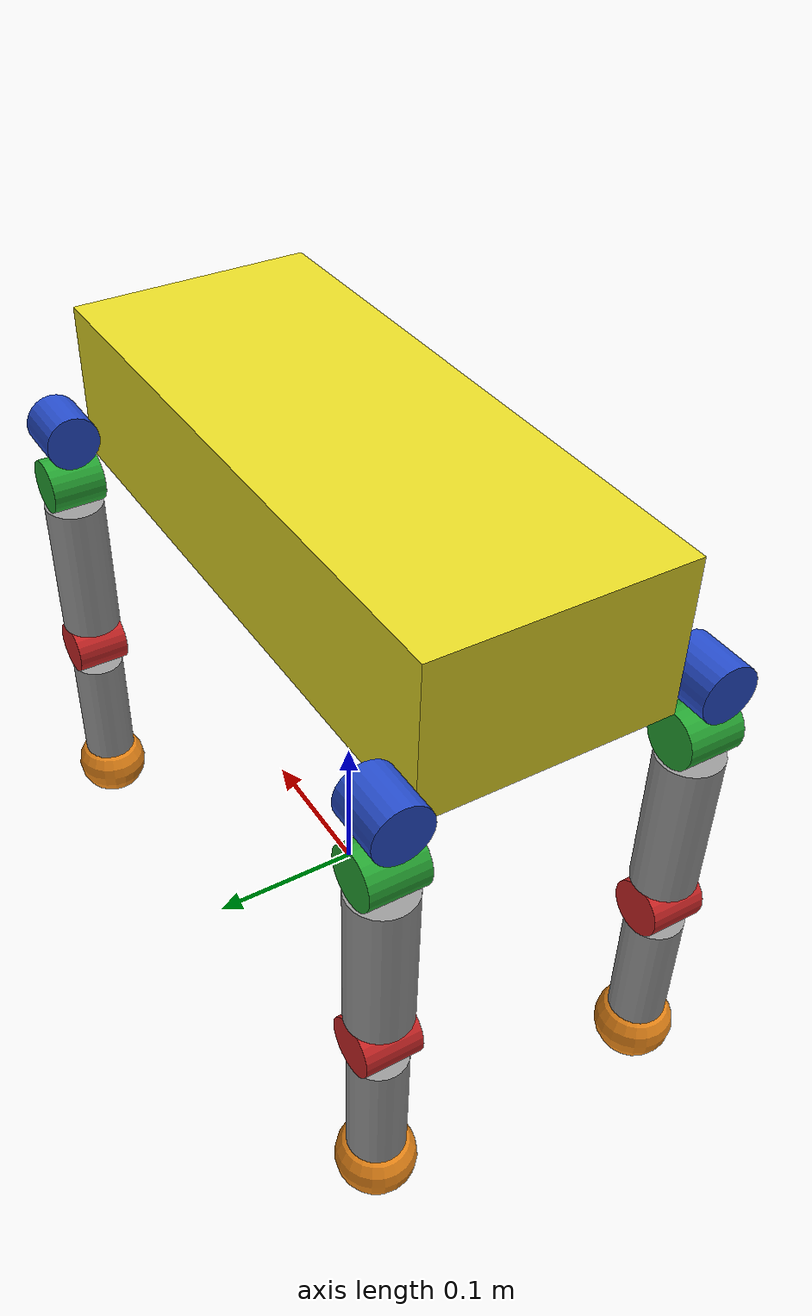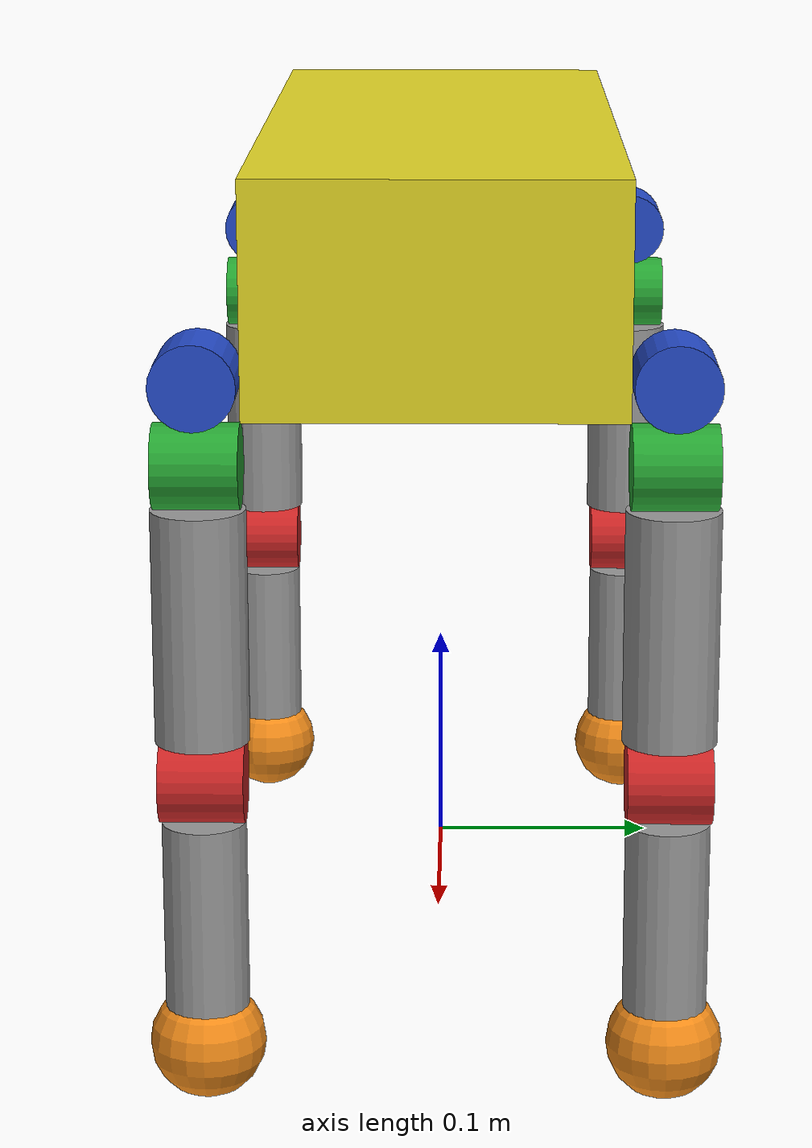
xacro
<?xml version="1.0"?>
<robot name="dog" xmlns:xacro="http://ros.org/wiki/xacro">

  <!-- ======= Parameters ======= -->

  <!-- Trunk dimensions -->
  <xacro:property name="body_x" value="0.40"/>
  <xacro:property name="body_y" value="0.16"/>
  <xacro:property name="body_z" value="0.10"/>

  <!-- Leg geometry -->
  <xacro:property name="hip_len"  value="0.036"/>   <!-- hip cylinder length -->
  <xacro:property name="hip_rad"  value="0.018"/>  <!-- hip cylinder radius -->

  <xacro:property name="thigh_len" value="0.10"/>
  <xacro:property name="thigh_rad" value="0.020"/>

  <xacro:property name="shank_len" value="0.10"/>
  <xacro:property name="shank_rad" value="0.018"/>

  <xacro:property name="foot_rad" value="0.025"/>

  <!-- Mounting offsets -->
    <xacro:property name="hip_clear_y" value="${hip_rad}"/>   <!-- move hip outside trunk side -->
  <xacro:property name="hip_drop_z"  value="${hip_rad}"/>   <!-- move hip below trunk -->

  <!-- Knee joint lateral offset (outward) -->
    <xacro:property name="knee_clear_y" value="0.05"/>
  <!-- Knee joint fore/aft offset (to mimic side-mounted joint brackets as in example) -->
    <xacro:property name="knee_fwd_x" value="0.02"/>

  <!-- Simple masses -->
  <xacro:property name="m_trunk" value="1.0"/>
  <xacro:property name="m_hip"   value="0.25"/>
  <xacro:property name="m_thigh" value="0.35"/>
  <xacro:property name="m_shank" value="0.25"/>
  <xacro:property name="m_foot"  value="0.05"/>

  <!-- Convenience -->
  <xacro:macro name="inertial_box" params="m x y z">
    <inertial>
      <origin xyz="0 0 0" rpy="0 0 0"/>
      <mass value="${m}"/>
      <!-- crude diagonal inertia, good enough for sim bringup -->
      <inertia
        ixx="${m*(y*y+z*z)/12.0}"
        iyy="${m*(x*x+z*z)/12.0}"
        izz="${m*(x*x+y*y)/12.0}"
        ixy="0" ixz="0" iyz="0"/>
    </inertial>
  </xacro:macro>

  <xacro:macro name="inertial_cyl" params="m r l axis">
    <!-- axis: 'z' assumes cylinder axis is z in link frame -->
    <inertial>
      <origin xyz="0 0 0" rpy="0 0 0"/>
      <mass value="${m}"/>
      <!-- Approx inertia for solid cylinder along z -->
      <inertia
        ixx="${m*(3*r*r + l*l)/12.0}"
        iyy="${m*(3*r*r + l*l)/12.0}"
        izz="${m*(r*r)/2.0}"
        ixy="0" ixz="0" iyz="0"/>
    </inertial>
  </xacro:macro>

  <!-- ======= Base / Trunk ======= -->
  <link name="base_link"/>

  <link name="trunk">
    <visual>
      <origin xyz="0 0 0" rpy="0 0 0"/>
      <geometry><box size="${body_x} ${body_y} ${body_z}"/></geometry>
    </visual>
    <collision>
      <origin xyz="0 0 0" rpy="0 0 0"/>
      <geometry><box size="${body_x} ${body_y} ${body_z}"/></geometry>
    </collision>
    <xacro:inertial_box m="${m_trunk}" x="${body_x}" y="${body_y}" z="${body_z}"/>
  </link>

  <joint name="base_to_trunk" type="fixed">
    <parent link="base_link"/>
    <child link="trunk"/>
    <origin xyz="0 0 0.30" rpy="0 0 0"/>
  </joint>

  <gazebo reference="trunk">
    <material>Gazebo/Yellow</material>
      <mu1>150.01</mu1>
      <mu2>150.01</mu2>
  </gazebo>

  <!-- ======= Leg macro ======= -->
  <!-- side = 'l' or 'r' determines y sign; end = 'f' or 'h' determines x sign -->
  <xacro:macro name="leg3dof" params="leg xsign ysign">
    <!-- Mount point at trunk corner, then moved OUTWARD (y) and DOWN (z) -->
    <xacro:property name="x_mount" value="${xsign * body_x/2.0}"/>
    <xacro:property name="y_mount" value="${ysign * (body_y/2.0 + hip_clear_y)}"/>
    <xacro:property name="z_mount" value="${-(body_z/2.0 - hip_drop_z)}"/>

    <!-- Hip link: cylinder "housing" -->
    <link name="${leg}_hip">
      <visual>
        <!-- rotate cylinder so its axis aligns with +X -->
        <origin xyz="0 0 0" rpy="0 1.57079632679 0"/>
        <geometry><cylinder radius="${hip_rad}" length="${hip_len}"/></geometry>
      </visual>
      <collision>
        <origin xyz="0 0 0" rpy="0 1.57079632679 0"/>
        <geometry><cylinder radius="${hip_rad}" length="${hip_len}"/></geometry>
      </collision>
      <!-- inertia computed in link frame (cyl along z), but we're rotating visual/collision only; good enough -->
      <xacro:inertial_cyl m="${m_hip}" r="${hip_rad}" l="${hip_len}" axis="z"/>
    </link>

    <joint name="${leg}_hip_abd" type="revolute">
      <parent link="trunk"/>
      <child link="${leg}_hip"/>
      <origin xyz="${x_mount} ${y_mount} ${z_mount}" rpy="0 0 0"/>
      <!-- ab/ad around X -->
      <axis xyz="1 0 0"/>
      <limit lower="-0.8" upper="0.8" effort="50" velocity="6.0"/>
      <dynamics damping="0.5" friction="0.01"/>
    </joint>

    <!-- Hip pitch: cylinder "housing" -->
    <link name="${leg}_hip_2">
      <visual>
        <!-- rotate cylinder so its axis aligns with +X -->
        <origin xyz="0 0 0" rpy="1.57079632679 0 0"/>
        <geometry><cylinder radius="${hip_rad}" length="${hip_len}"/></geometry>
      </visual>
      <collision>
        <origin xyz="0 0 0" rpy="1.57079632679 0 0"/>
        <geometry><cylinder radius="${hip_rad}" length="${hip_len}"/></geometry>
      </collision>
      <!-- inertia computed in link frame (cyl along z), but we're rotating visual/collision only; good enough -->
      <xacro:inertial_cyl m="${m_hip}" r="${hip_rad}" l="${hip_len}" axis="z"/>
    </link>

    <joint name="${leg}_hip_pitch" type="revolute">
      <parent link="${leg}_hip"/>
      <child link="${leg}_hip_2"/>
      <origin xyz="0.0 0.0 ${-2*hip_drop_z}" rpy="0 0 0"/>
      <!-- ab/ad around X -->
      <axis xyz="0 1 0"/>
      <limit lower="-1.3" upper="1.3" effort="50" velocity="6.0"/>
      <dynamics damping="0.5" friction="0.01"/>
    </joint>

    <!-- Thigh Link: cylinder -->
    <link name="${leg}_thigh">
      <visual>
        <!-- rotate cylinder so its axis aligns with +X -->
        <origin xyz="0 0 0" rpy="0 0 0"/>
        <geometry><cylinder radius="${thigh_rad}" length="${thigh_len}"/></geometry>
      </visual>
      <collision>
        <origin xyz="0 0 0" rpy="0 0 0"/>
        <geometry><cylinder radius="${thigh_rad}" length="${thigh_len}"/></geometry>
      </collision>
      <!-- inertia computed in link frame (cyl along z), but we're rotating visual/collision only; good enough -->
      <xacro:inertial_cyl m="${m_thigh}" r="${thigh_rad}" l="${thigh_len}" axis="z"/>
    </link>

    <joint name="${leg}_hip_thigh" type="fixed">
      <parent link="${leg}_hip_2"/>
      <child link="${leg}_thigh"/>
      <origin xyz="0 0 ${-hip_drop_z - (thigh_len/2.0)}" rpy="0 0 0"/>
    </joint>

    <!-- Knee pitch: cylinder "housing" -->
    <link name="${leg}_knee">
      <visual>
        <!-- rotate cylinder so its axis aligns with +X -->
        <origin xyz="0 0 0" rpy="1.57079632679 0 0"/>
        <geometry><cylinder radius="${hip_rad}" length="${hip_len}"/></geometry>
      </visual>
      <collision>
        <origin xyz="0 0 0" rpy="1.57079632679 0 0"/>
        <geometry><cylinder radius="${hip_rad}" length="${hip_len}"/></geometry>
      </collision>
      <!-- inertia computed in link frame (cyl along z), but we're rotating visual/collision only; good enough -->
      <xacro:inertial_cyl m="${m_hip}" r="${hip_rad}" l="${hip_len}" axis="z"/>
    </link>

    <joint name="${leg}_knee_pitch" type="revolute">
      <parent link="${leg}_thigh"/>
      <child link="${leg}_knee"/>
      <origin xyz="0.0 0.0 ${-hip_drop_z - (thigh_len/2.0)}" rpy="0 0 0"/>
      <!-- ab/ad around X -->
      <axis xyz="0 1 0"/>
      <limit lower="-1.3" upper="1.3" effort="50" velocity="6.0"/>
      <dynamics damping="0.5" friction="0.01"/>
    </joint>

    <!-- Thigh Link: cylinder -->
    <link name="${leg}_shank">
      <visual>
        <!-- rotate cylinder so its axis aligns with +X -->
        <origin xyz="0 0 0" rpy="0 0 0"/>
        <geometry><cylinder radius="${shank_rad}" length="${shank_len}"/></geometry>
      </visual>
      <collision>
        <origin xyz="0 0 0" rpy="0 0 0"/>
        <geometry><cylinder radius="${shank_rad}" length="${shank_len}"/></geometry>
      </collision>
      <!-- inertia computed in link frame (cyl along z), but we're rotating visual/collision only; good enough -->
      <xacro:inertial_cyl m="${m_thigh}" r="${shank_rad}" l="${shank_len}" axis="z"/>
    </link>

    <joint name="${leg}_knee_shank" type="fixed">
      <parent link="${leg}_knee"/>
      <child link="${leg}_shank"/>
      <origin xyz="0 0 ${-hip_drop_z - (shank_len/2.0)}" rpy="0 0 0"/>
    </joint>

    <!-- Foot -->
    <link name="${leg}_foot">
      <visual>
        <origin xyz="0 0 0" rpy="0 0 0"/>
        <geometry><sphere radius="${foot_rad}"/></geometry>
      </visual>
      <collision>
        <origin xyz="0 0 0" rpy="0 0 0"/>
        <geometry><sphere radius="${foot_rad}"/></geometry>
      </collision>
      <inertial>
        <origin xyz="0 0 0" rpy="0 0 0"/>
        <mass value="${m_foot}"/>
        <inertia ixx="1e-5" iyy="1e-5" izz="1e-5" ixy="0" ixz="0" iyz="0"/>
      </inertial>
    </link>

    <joint name="${leg}_ankle_fixed" type="fixed">
      <parent link="${leg}_shank"/>
      <child link="${leg}_foot"/>
      <origin xyz="0 0 ${-shank_len/2}" rpy="0 0 0"/>
    </joint>

    <gazebo reference="${leg}_hip">
      <material>Gazebo/Blue</material>
        <mu1>10.01</mu1>
        <mu2>1.01</mu2>
    </gazebo>

    <gazebo reference="${leg}_hip_2">
      <material>Gazebo/Green</material>
        <mu1>10.01</mu1>
        <mu2>1.01</mu2>
    </gazebo>
    <gazebo reference="${leg}_knee">
      <material>Gazebo/Red</material>
        <mu1>10.01</mu1>
        <mu2>1.01</mu2>
    </gazebo>
    <gazebo reference="${leg}_thigh">
      <material>Gazebo/Grey</material>
        <mu1>10.01</mu1>
        <mu2>1.01</mu2>
    </gazebo>
    <gazebo reference="${leg}_shank">
      <material>Gazebo/Grey</material>
        <mu1>10.01</mu1>
        <mu2>1.01</mu2>
    </gazebo>
    <gazebo reference="${leg}_foot">
      <material>Gazebo/Orange</material>
        <mu1>10.01</mu1>
        <mu2>1.01</mu2>
    </gazebo>
  </xacro:macro>

  <!-- 4 legs -->
  <xacro:leg3dof leg="lf" xsign="1"  ysign="1"/>
  <xacro:leg3dof leg="rf" xsign="1"  ysign="-1"/>
  <xacro:leg3dof leg="lh" xsign="-1" ysign="1"/>
  <xacro:leg3dof leg="rh" xsign="-1" ysign="-1"/>

  <!-- ======= ros2_control ======= -->
  <ros2_control name="gz_sim_system" type="system">
    <hardware>
      <plugin>gz_ros2_control/GazeboSimSystem</plugin>
    </hardware>

    <!-- Declare command/state interfaces for each actuated joint -->
    <joint name="lf_hip_abd">
      <command_interface name="position"/>
      <state_interface name="position"/>
      <state_interface name="velocity"/>
    </joint>

    <joint name="rf_hip_abd">
      <command_interface name="position"/>
      <state_interface name="position"/>
      <state_interface name="velocity"/>
    </joint>

    <joint name="lh_hip_abd">
      <command_interface name="position"/>
      <state_interface name="position"/>
      <state_interface name="velocity"/>
    </joint>

    <joint name="rh_hip_abd">
      <command_interface name="position"/>
      <state_interface name="position"/>
      <state_interface name="velocity"/>
    </joint>

    <joint name="lf_hip_pitch">
      <command_interface name="position"/>
      <state_interface name="position"/>
      <state_interface name="velocity"/>
    </joint>

    <joint name="rf_hip_pitch">
      <command_interface name="position"/>
      <state_interface name="position"/>
      <state_interface name="velocity"/>
    </joint>

    <joint name="lh_hip_pitch">
      <command_interface name="position"/>
      <state_interface name="position"/>
      <state_interface name="velocity"/>
    </joint>

    <joint name="rh_hip_pitch">
      <command_interface name="position"/>
      <state_interface name="position"/>
      <state_interface name="velocity"/>
    </joint>

    <joint name="lf_knee_pitch">
      <command_interface name="position"/>
      <state_interface name="position"/>
      <state_interface name="velocity"/>
    </joint>

    <joint name="rf_knee_pitch">
      <command_interface name="position"/>
      <state_interface name="position"/>
      <state_interface name="velocity"/>
    </joint>

    <joint name="lh_knee_pitch">
      <command_interface name="position"/>
      <state_interface name="position"/>
      <state_interface name="velocity"/>
    </joint>

    <joint name="rh_knee_pitch">
      <command_interface name="position"/>
      <state_interface name="position"/>
      <state_interface name="velocity"/>
    </joint>
  </ros2_control>

  <!-- ======= gz-sim plugin (NOT Gazebo Classic) ======= -->
  <gazebo>
    <plugin filename="libgz_ros2_control-system.so"
            name="gz_ros2_control::GazeboSimROS2ControlPlugin">
      <parameters>/ros_ws/src/biorobotics_tutorial/models/config/dog_quadruped_config.yaml</parameters>
    </plugin>
  </gazebo>

</robot>
